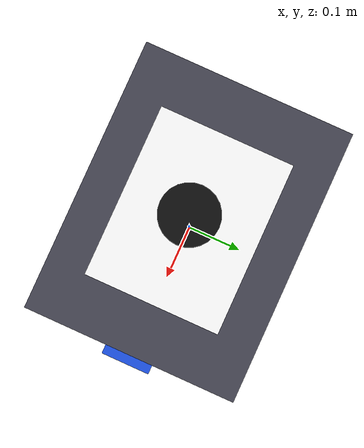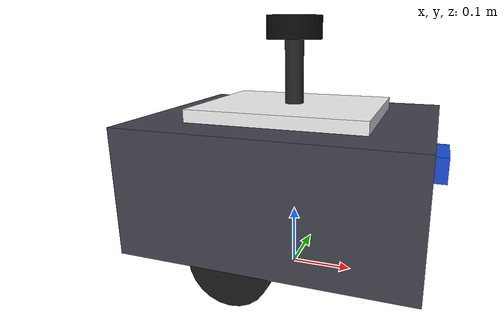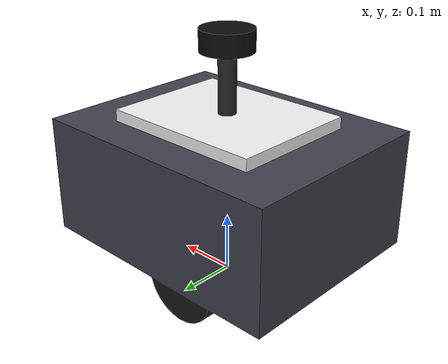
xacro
<?xml version="1.0"?>
<robot name="butler_robot" xmlns:xacro="http://www.ros.org/wiki/xacro">

  <xacro:property name="base_length"   value="0.45"/>
  <xacro:property name="base_width"    value="0.35"/>
  <xacro:property name="base_height"   value="0.20"/>
  <xacro:property name="base_mass"     value="15.0"/>

  <xacro:property name="wheel_radius"  value="0.065"/>
  <xacro:property name="wheel_width"   value="0.04"/>
  <xacro:property name="wheel_mass"    value="0.8"/>
  <xacro:property name="wheel_sep"     value="0.28"/>
  <xacro:property name="wheel_x_off"   value="-0.05"/>

  <xacro:property name="caster_radius" value="0.025"/>
  <xacro:property name="caster_mass"   value="0.3"/>

  <xacro:property name="lidar_post_h"  value="0.12"/>
  <xacro:property name="lidar_radius"  value="0.044"/>
  <xacro:property name="lidar_height"  value="0.036"/>
  <xacro:property name="lidar_mass"    value="0.17"/>

  <xacro:macro name="inertia_box" params="m x y z">
    <inertial>
      <mass value="${m}"/>
      <inertia
        ixx="${m*(y*y+z*z)/12}" ixy="0" ixz="0"
        iyy="${m*(x*x+z*z)/12}" iyz="0"
        izz="${m*(x*x+y*y)/12}"/>
    </inertial>
  </xacro:macro>

  <xacro:macro name="inertia_cylinder" params="m r h">
    <inertial>
      <mass value="${m}"/>
      <inertia
        ixx="${m*(3*r*r+h*h)/12}" ixy="0" ixz="0"
        iyy="${m*(3*r*r+h*h)/12}" iyz="0"
        izz="${m*r*r/2}"/>
    </inertial>
  </xacro:macro>

  <xacro:macro name="inertia_sphere" params="m r">
    <inertial>
      <mass value="${m}"/>
      <inertia
        ixx="${2*m*r*r/5}" ixy="0" ixz="0"
        iyy="${2*m*r*r/5}" iyz="0"
        izz="${2*m*r*r/5}"/>
    </inertial>
  </xacro:macro>

  <link name="base_footprint"/>

  <joint name="base_footprint_joint" type="fixed">
    <parent link="base_footprint"/>
    <child  link="base_link"/>
    <origin xyz="0 0 ${wheel_radius}" rpy="0 0 0"/>
  </joint>

  <link name="base_link">
    <visual>
      <origin xyz="0 0 ${base_height/2}" rpy="0 0 0"/>
      <geometry><box size="${base_length} ${base_width} ${base_height}"/></geometry>
      <material name="chassis_grey"><color rgba="0.25 0.25 0.30 1.0"/></material>
    </visual>
    <collision>
      <origin xyz="0 0 ${base_height/2}" rpy="0 0 0"/>
      <geometry><box size="${base_length} ${base_width} ${base_height}"/></geometry>
    </collision>
    <xacro:inertia_box m="${base_mass}" x="${base_length}" y="${base_width}" z="${base_height}"/>
  </link>

  <link name="tray_link">
    <visual>
      <origin xyz="0 0 0.01" rpy="0 0 0"/>
      <geometry><box size="0.28 0.22 0.02"/></geometry>
      <material name="white"><color rgba="0.95 0.95 0.95 1"/></material>
    </visual>
    <collision>
      <origin xyz="0 0 0.01" rpy="0 0 0"/>
      <geometry><box size="0.28 0.22 0.02"/></geometry>
    </collision>
    <inertial>
      <mass value="0.3"/>
      <inertia ixx="0.001" ixy="0" ixz="0" iyy="0.001" iyz="0" izz="0.001"/>
    </inertial>
  </link>
  <joint name="tray_joint" type="fixed">
    <parent link="base_link"/>
    <child  link="tray_link"/>
    <origin xyz="0.0 0.0 ${base_height}" rpy="0 0 0"/>
  </joint>

  <xacro:macro name="wheel" params="name x_pos y_pos">
    <link name="${name}">
      <visual>
        <origin xyz="0 0 0" rpy="${pi/2} 0 0"/>
        <geometry><cylinder radius="${wheel_radius}" length="${wheel_width}"/></geometry>
        <material name="wheel_dark"><color rgba="0.10 0.10 0.10 1.0"/></material>
      </visual>
      <collision>
        <origin xyz="0 0 0" rpy="${pi/2} 0 0"/>
        <geometry><cylinder radius="${wheel_radius}" length="${wheel_width}"/></geometry>
      </collision>
      <xacro:inertia_cylinder m="${wheel_mass}" r="${wheel_radius}" h="${wheel_width}"/>
    </link>
    <joint name="${name}_joint" type="continuous">
      <parent link="base_link"/>
      <child  link="${name}"/>
      <origin xyz="${x_pos} ${y_pos} 0" rpy="0 0 0"/>
      <axis   xyz="0 1 0"/>
      <dynamics damping="0.05" friction="0.5"/>
    </joint>
  </xacro:macro>

  <xacro:wheel name="left_wheel"  x_pos="${wheel_x_off}" y_pos=" ${wheel_sep/2}"/>
  <xacro:wheel name="right_wheel" x_pos="${wheel_x_off}" y_pos="-${wheel_sep/2}"/>

  <link name="caster_wheel_link">
    <visual>
      <geometry><sphere radius="${caster_radius}"/></geometry>
      <material name="caster_grey"><color rgba="0.6 0.6 0.6 1"/></material>
    </visual>
    <collision>
      <geometry><sphere radius="${caster_radius}"/></geometry>
    </collision>
    <xacro:inertia_sphere m="${caster_mass}" r="${caster_radius}"/>
  </link>
  <joint name="caster_wheel_joint" type="fixed">
    <parent link="base_link"/>
    <child  link="caster_wheel_link"/>
    <origin xyz="${base_length/2 - 0.05} 0 ${-(wheel_radius - caster_radius)}" rpy="0 0 0"/>
  </joint>

  <link name="lidar_post_link">
    <visual>
      <origin xyz="0 0 ${lidar_post_h/2}" rpy="0 0 0"/>
      <geometry><cylinder radius="0.015" length="${lidar_post_h}"/></geometry>
      <material name="post_dark"><color rgba="0.15 0.15 0.15 1"/></material>
    </visual>
    <collision>
      <origin xyz="0 0 ${lidar_post_h/2}" rpy="0 0 0"/>
      <geometry><cylinder radius="0.015" length="${lidar_post_h}"/></geometry>
    </collision>
    <inertial>
      <mass value="0.05"/>
      <inertia ixx="0.0001" ixy="0" ixz="0" iyy="0.0001" iyz="0" izz="0.0001"/>
    </inertial>
  </link>
  <joint name="lidar_post_joint" type="fixed">
    <parent link="base_link"/>
    <child  link="lidar_post_link"/>
    <origin xyz="0.0 0.0 ${base_height}" rpy="0 0 0"/>
  </joint>

  <link name="lidar_link">
    <visual>
      <origin xyz="0 0 ${lidar_height/2}" rpy="0 0 0"/>
      <geometry><cylinder radius="${lidar_radius}" length="${lidar_height}"/></geometry>
      <material name="lidar_black"><color rgba="0.05 0.05 0.05 1"/></material>
    </visual>
    <collision>
      <origin xyz="0 0 ${lidar_height/2}" rpy="0 0 0"/>
      <geometry><cylinder radius="${lidar_radius}" length="${lidar_height}"/></geometry>
    </collision>
    <xacro:inertia_cylinder m="${lidar_mass}" r="${lidar_radius}" h="${lidar_height}"/>
  </link>
  <joint name="lidar_joint" type="fixed">
    <parent link="lidar_post_link"/>
    <child  link="lidar_link"/>
    <origin xyz="0.0 0.0 ${lidar_post_h}" rpy="0 0 0"/>
  </joint>

  <link name="camera_link">
    <visual>
      <origin xyz="0 0 0" rpy="0 0 0"/>
      <geometry><box size="0.04 0.08 0.04"/></geometry>
      <material name="camera_blue"><color rgba="0.1 0.3 0.85 1"/></material>
    </visual>
    <collision>
      <origin xyz="0 0 0" rpy="0 0 0"/>
      <geometry><box size="0.04 0.08 0.04"/></geometry>
    </collision>
    <inertial>
      <mass value="0.05"/>
      <inertia ixx="0.0001" ixy="0" ixz="0" iyy="0.0001" iyz="0" izz="0.0001"/>
    </inertial>
  </link>
  <joint name="camera_joint" type="fixed">
    <parent link="base_link"/>
    <child  link="camera_link"/>
    <origin xyz="${base_length/2} 0.0 ${base_height*0.7}" rpy="0 0 0"/>
  </joint>

  <link name="camera_optical_link"/>
  <joint name="camera_optical_joint" type="fixed">
    <parent link="camera_link"/>
    <child  link="camera_optical_link"/>
    <origin xyz="0 0 0" rpy="${-pi/2} 0 ${-pi/2}"/>
  </joint>

  <link name="imu_link">
    <visual>
      <origin xyz="0 0 0" rpy="0 0 0"/>
      <geometry><box size="0.02 0.02 0.01"/></geometry>
      <material name="imu_green"><color rgba="0 0.8 0.2 1"/></material>
    </visual>
    <inertial>
      <mass value="0.01"/>
      <inertia ixx="0.00001" ixy="0" ixz="0" iyy="0.00001" iyz="0" izz="0.00001"/>
    </inertial>
  </link>
  <joint name="imu_joint" type="fixed">
    <parent link="base_link"/>
    <child  link="imu_link"/>
    <origin xyz="0 0 ${base_height/2}" rpy="0 0 0"/>
  </joint>

  <gazebo reference="base_link">
    <material>Gazebo/DarkGrey</material>
    <mu1>0.2</mu1><mu2>0.2</mu2>
    <kp>1000000.0</kp><kd>100.0</kd>
  </gazebo>

  <gazebo reference="left_wheel">
    <material>Gazebo/Black</material>
    <mu1>1.5</mu1><mu2>1.5</mu2>
    <kp>1000000.0</kp><kd>100.0</kd>
    <fdir1>1 0 0</fdir1>
  </gazebo>
  <gazebo reference="right_wheel">
    <material>Gazebo/Black</material>
    <mu1>1.5</mu1><mu2>1.5</mu2>
    <kp>1000000.0</kp><kd>100.0</kd>
    <fdir1>1 0 0</fdir1>
  </gazebo>

  <gazebo reference="caster_wheel_link">
    <material>Gazebo/Grey</material>
    <mu1>0.001</mu1><mu2>0.001</mu2>
    <kp>1000000.0</kp><kd>100.0</kd>
  </gazebo>

  <gazebo reference="lidar_link"><material>Gazebo/FlatBlack</material></gazebo>
  <gazebo reference="tray_link"><material>Gazebo/White</material></gazebo>
  <gazebo reference="lidar_post_link"><material>Gazebo/FlatBlack</material></gazebo>
  <gazebo reference="camera_link"><material>Gazebo/Blue</material></gazebo>
  <gazebo reference="imu_link"><material>Gazebo/Green</material></gazebo>

  <gazebo>
    <plugin name="diff_drive" filename="libgazebo_ros_diff_drive.so">
      <update_rate>30</update_rate>
      <left_joint>left_wheel_joint</left_joint>
      <right_joint>right_wheel_joint</right_joint>
      <wheel_separation>${wheel_sep}</wheel_separation>
      <wheel_diameter>${2*wheel_radius}</wheel_diameter>
      <max_wheel_torque>30.0</max_wheel_torque>
      <max_wheel_acceleration>2.0</max_wheel_acceleration>
      <command_topic>cmd_vel</command_topic>
      <odometry_topic>odom</odometry_topic>
      <odometry_frame>odom</odometry_frame>
      <robot_base_frame>base_footprint</robot_base_frame>
      <publish_odom>true</publish_odom>
      <publish_odom_tf>true</publish_odom_tf>
      <publish_wheel_tf>false</publish_wheel_tf>
      <ros>
        <remapping>cmd_vel:=cmd_vel</remapping>
        <remapping>odom:=odom</remapping>
      </ros>
    </plugin>
  </gazebo>

  <gazebo reference="lidar_link">
    <sensor name="lidar" type="ray">
      <always_on>true</always_on>
      <visualize>false</visualize>
      <update_rate>10</update_rate>
      <ray>
        <scan>
          <horizontal>
            <samples>360</samples>
            <resolution>1</resolution>
            <min_angle>-2.356194</min_angle>
            <max_angle>2.356194</max_angle>
          </horizontal>
        </scan>
        <range>
          <min>0.20</min>
          <max>10.0</max>
          <resolution>0.01</resolution>
        </range>
        <noise><type>gaussian</type><mean>0.0</mean><stddev>0.01</stddev></noise>
      </ray>
      <plugin name="lidar_plugin" filename="libgazebo_ros_ray_sensor.so">
        <ros><remapping>~/out:=scan</remapping></ros>
        <output_type>sensor_msgs/LaserScan</output_type>
        <frame_name>lidar_link</frame_name>
      </plugin>
    </sensor>
  </gazebo>

  <gazebo reference="camera_link">
    <sensor name="camera" type="camera">
      <always_on>true</always_on>
      <visualize>false</visualize>
      <update_rate>15</update_rate>
      <camera>
        <horizontal_fov>1.3962634</horizontal_fov>
        <image><width>640</width><height>480</height><format>R8G8B8</format></image>
        <clip><near>0.02</near><far>20.0</far></clip>
        <noise><type>gaussian</type><mean>0.0</mean><stddev>0.007</stddev></noise>
      </camera>
      <plugin name="camera_plugin" filename="libgazebo_ros_camera.so">
        <ros>
          <remapping>image_raw:=camera/image_raw</remapping>
          <remapping>camera_info:=camera/camera_info</remapping>
        </ros>
        <camera_name>camera</camera_name>
        <frame_name>camera_optical_link</frame_name>
      </plugin>
    </sensor>
  </gazebo>

  <gazebo reference="imu_link">
    <sensor name="imu_sensor" type="imu">
      <always_on>true</always_on>
      <update_rate>100</update_rate>
      <imu>
        <angular_velocity>
          <x><noise type="gaussian"><mean>0</mean><stddev>0.009</stddev></noise></x>
          <y><noise type="gaussian"><mean>0</mean><stddev>0.009</stddev></noise></y>
          <z><noise type="gaussian"><mean>0</mean><stddev>0.009</stddev></noise></z>
        </angular_velocity>
        <linear_acceleration>
          <x><noise type="gaussian"><mean>0</mean><stddev>0.1</stddev></noise></x>
          <y><noise type="gaussian"><mean>0</mean><stddev>0.1</stddev></noise></y>
          <z><noise type="gaussian"><mean>0</mean><stddev>0.1</stddev></noise></z>
        </linear_acceleration>
      </imu>
      <plugin name="imu_plugin" filename="libgazebo_ros_imu_sensor.so">
        <ros><remapping>~/out:=imu/data</remapping></ros>
        <initial_orientation_as_reference>false</initial_orientation_as_reference>
        <frame_name>imu_link</frame_name>
      </plugin>
    </sensor>
  </gazebo>

</robot>
